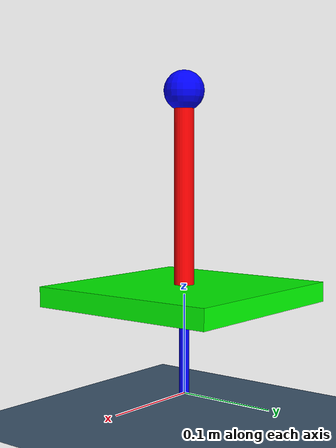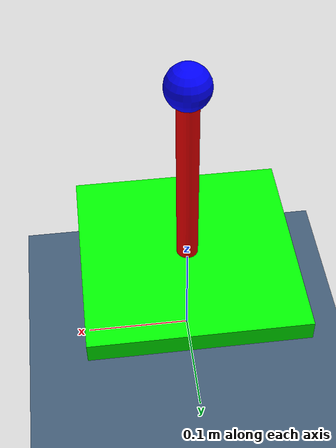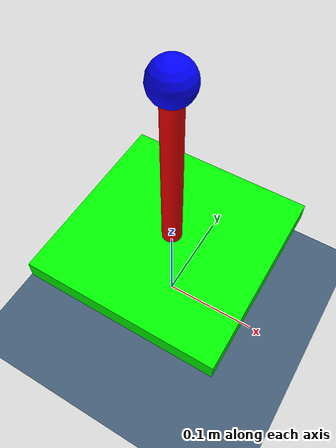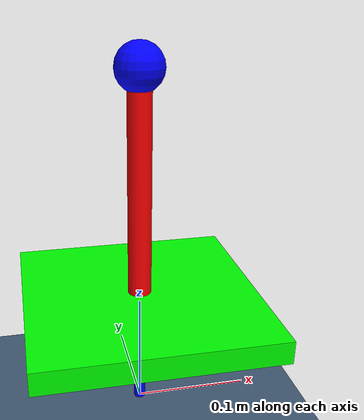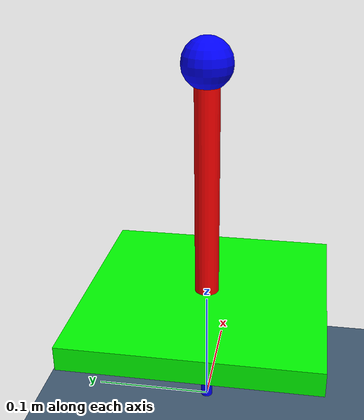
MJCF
<mujoco model="cartpole_2d_jumping">
    <visual>
        <map force="0.1" zfar="30"/>
        <global fovy="80" offwidth="2560" offheight="1440" elevation="-20" azimuth="0"/>
        <!-- Camera pointed towards positive y -->
        <headlight ambient="0.15 0.15 0.15" specular="0 0 0" diffuse="0.6 0.6 0.6" />
    </visual>

    <asset>
        <texture type="skybox" builtin="gradient" rgb1=".3 .5 .7" width="32" height="512"/>
        <texture name="body" type="cube" builtin="flat" mark="cross" width="128" height="128" rgb1="0.8 0.6 0.4" rgb2="0.8 0.6 0.4" markrgb="1 1 1" random="0.01"/>
        <material name="body" texture="body" texuniform="true" rgba="0.8 0.6 .4 1"/>
        <texture name="grid" type="2d" builtin="checker" width="512" height="512" rgb1=".1 .2 .3" rgb2=".4 .5 .6"/>
        <material name="grid" texture="grid" texrepeat="1 1" texuniform="true" reflectance=".2"/>
    </asset>

    <worldbody>
        <geom name="floor" pos="0 0 -0.025" size="0 0 .05" type="plane" material="grid" condim="4" friction="1 0.1 0.0001"/>
        <body name="cart" pos="0 0 0.1">
            <joint name="q1" type="slide" axis="1 0 0" />
            <joint name="q2" type="slide" axis="0 1 0"/>
            <joint name="q3" type="slide" axis="0 0 1" range="0.05 10" />
            <inertial pos="0 0 0" mass="0.25" diaginertia="1e-4 1e-4 1e-4" />
            <geom type="box" size="0.1 0.1 0.01" rgba="0 1 0 1" />

            <body name="pole" pos="0 0 0.2" >
                <joint type="hinge" axis="0 1 0" pos="0 0 -0.2" name="q4"/>
                <joint type="hinge" axis="-1 0 0" pos="0 0 -0.2" name="q5"/>
                <inertial pos="0 0 0" mass="3e-3" diaginertia="1e-4 1e-4 1e-4" />
                <geom type="cylinder" pos="0 0 -0.1" size="0.01 0.1" rgba="1 0 0 1" contype="0" conaffinity="0" />

                <body name="bob" pos="0 0 0">
                    <joint type="slide" pos="0 0 0" axis="0 0 1" name="q6" range="-0.1 0.3" />
                    <inertial pos="0 0 0" mass="1" diaginertia="1e-4 1e-4 1e-4" />
                    <geom type="sphere" size="0.02" rgba="0 0 1 1" contype="0" conaffinity="0" />
                    <geom type="cylinder" pos="0 0 -0.15" size="0.005 0.15" rgba="0 0 1 1" contype="0" conaffinity="0" />
                </body>
            </body>
        </body>
    </worldbody>

    <actuator>
        <motor name="u1" gear="1 0 0 0 0 0" joint="q1"/>
        <motor name="u2" gear="1 0 0 0 0 0" joint="q2"/>
        <motor name="u3" gear="1 0 0 0 0 0" joint="q6"/>
    </actuator>
</mujoco>
